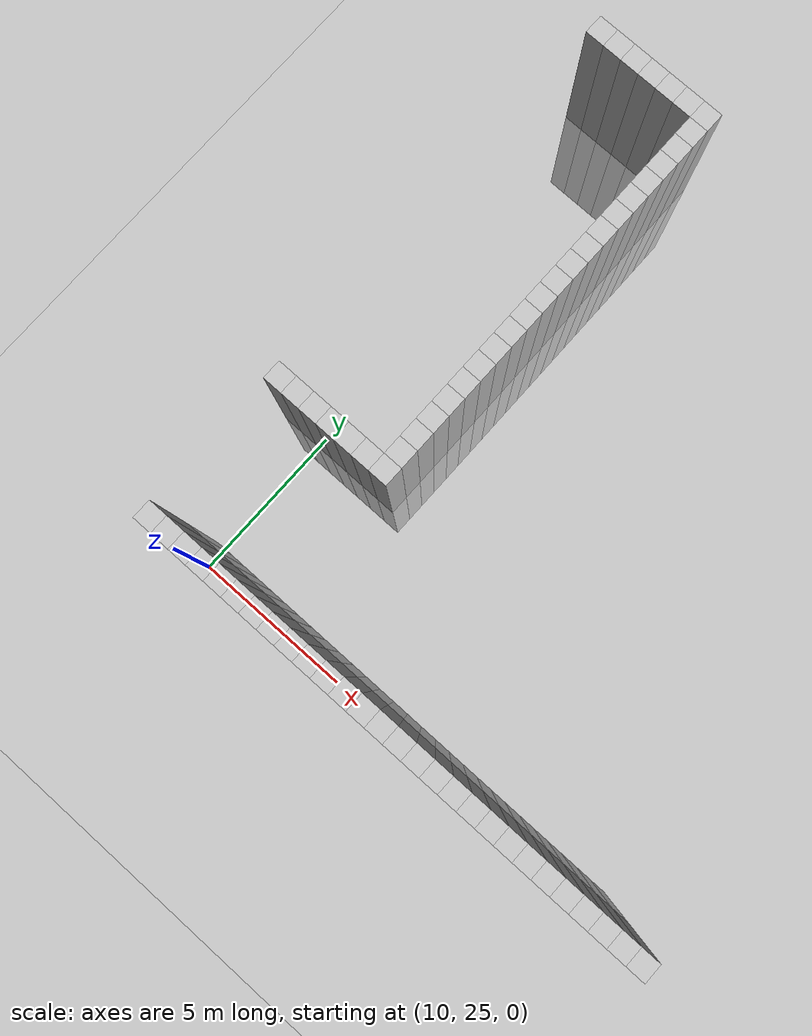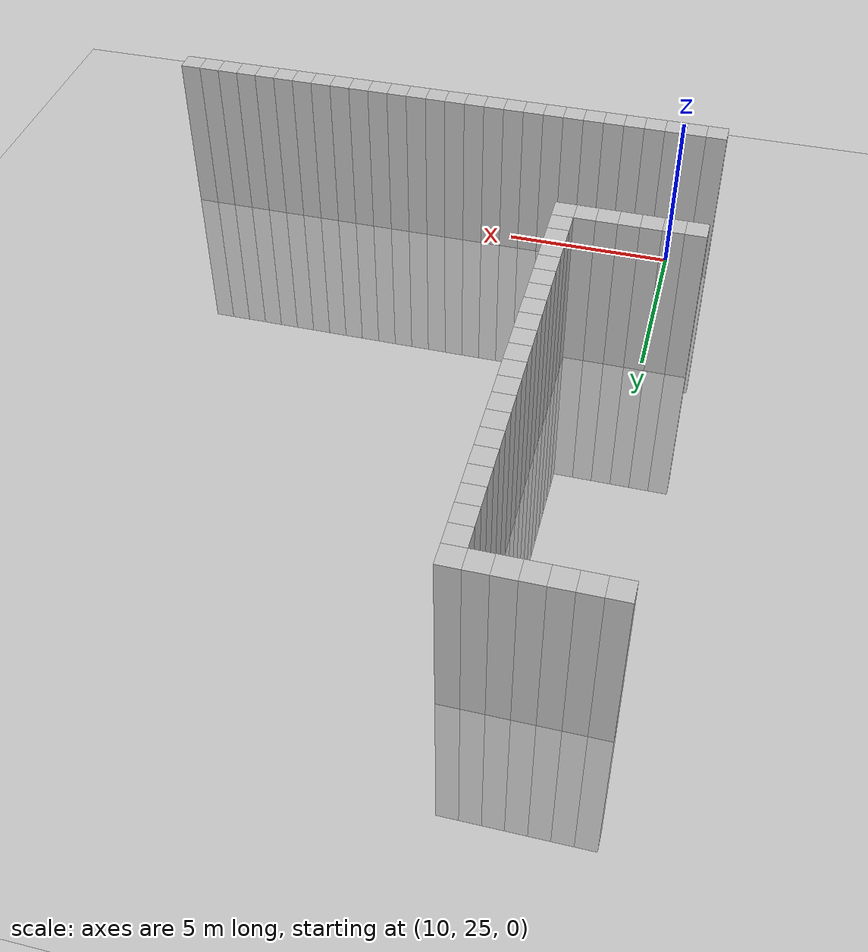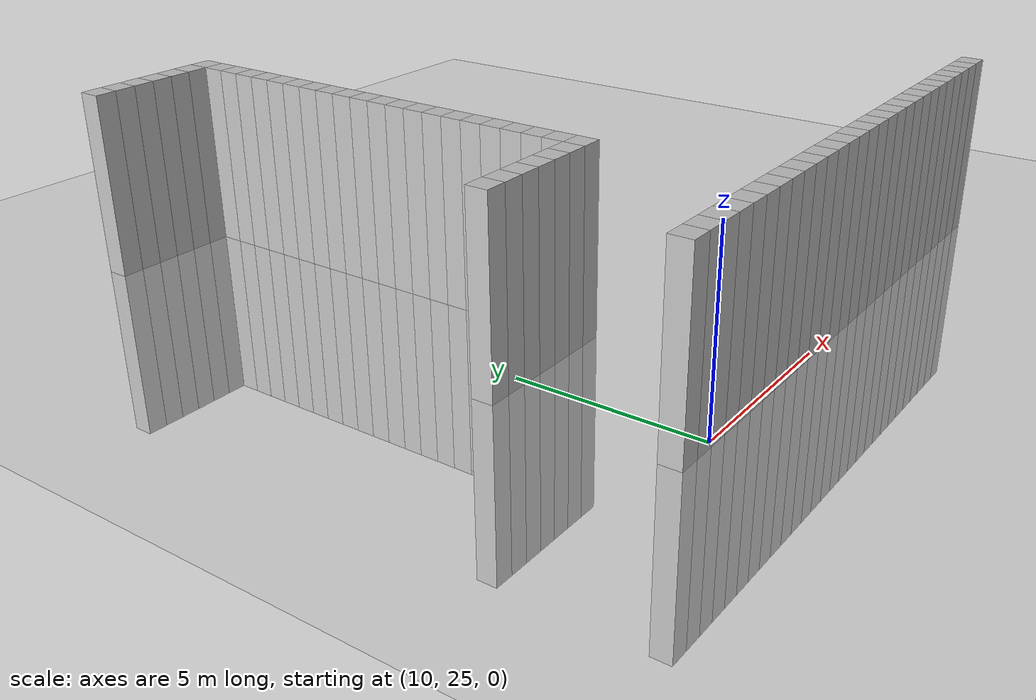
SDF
<sdf version="1.6">
 <world name="default">
  <model name="ground_plane">
   <static>1</static>
   <link name="link">
    <collision name="collision">
     <geometry><plane><normal>0 0 1</normal><size>100 100</size></plane></geometry>
     <surface><friction><ode><mu>100</mu><mu2>50</mu2></ode></friction></surface>
    </collision>
    <visual name="visual">
     <cast_shadows>0</cast_shadows>
     <geometry><plane><normal>0 0 1</normal><size>100 100</size></plane></geometry>
     <material>
      <script><uri>file://media/materials/scripts/gazebo.material</uri><name>Gazebo/Grey</name></script>
     </material>
    </visual>
   </link>
  </model>
  <model name="unit_cylinder_87">
   <static>1</static>
   <pose>9 25.2 0 0 -0 0</pose>
   <link name="link">
    <inertial>
     <mass>1</mass>
     <inertia><ixx>0.145833</ixx><ixy>0</ixy><ixz>0</ixz><iyy>0.145833</iyy><iyz>0</iyz><izz>0.125</izz></inertia>
    </inertial>
    <collision name="collision"><geometry><box><size>0.6 0.6 10</size></box></geometry></collision>
    <visual name="visual">
     <geometry><box><size>0.6 0.6 10</size></box></geometry>
     <material><ambient>0.753 0.753 0.753 1</ambient><diffuse>0.753 0.753 0.753 1</diffuse></material>
     <material>
      <script><name>Gazebo/Grey</name><uri>file://media/materials/scripts/gazebo.material</uri></script>
     </material>
    </visual>
   </link>
  </model>
  <model name="unit_cylinder_90">
   <static>1</static>
   <pose>9.6 25.2 0 0 -0 0</pose>
   <link name="link">
    <inertial>
     <mass>1</mass>
     <inertia><ixx>0.145833</ixx><ixy>0</ixy><ixz>0</ixz><iyy>0.145833</iyy><iyz>0</iyz><izz>0.125</izz></inertia>
    </inertial>
    <collision name="collision"><geometry><box><size>0.6 0.6 10</size></box></geometry></collision>
    <visual name="visual">
     <geometry><box><size>0.6 0.6 10</size></box></geometry>
     <material><ambient>0.753 0.753 0.753 1</ambient><diffuse>0.753 0.753 0.753 1</diffuse></material>
     <material>
      <script><name>Gazebo/Grey</name><uri>file://media/materials/scripts/gazebo.material</uri></script>
     </material>
    </visual>
   </link>
  </model>
  <model name="unit_cylinder_93">
   <static>1</static>
   <pose>10.2 25.2 0 0 -0 0</pose>
   <link name="link">
    <inertial>
     <mass>1</mass>
     <inertia><ixx>0.145833</ixx><ixy>0</ixy><ixz>0</ixz><iyy>0.145833</iyy><iyz>0</iyz><izz>0.125</izz></inertia>
    </inertial>
    <collision name="collision"><geometry><box><size>0.6 0.6 10</size></box></geometry></collision>
    <visual name="visual">
     <geometry><box><size>0.6 0.6 10</size></box></geometry>
     <material><ambient>0.753 0.753 0.753 1</ambient><diffuse>0.753 0.753 0.753 1</diffuse></material>
     <material>
      <script><name>Gazebo/Grey</name><uri>file://media/materials/scripts/gazebo.material</uri></script>
     </material>
    </visual>
   </link>
  </model>
  <model name="unit_cylinder_96">
   <static>1</static>
   <pose>10.8 25.2 0 0 -0 0</pose>
   <link name="link">
    <inertial>
     <mass>1</mass>
     <inertia><ixx>0.145833</ixx><ixy>0</ixy><ixz>0</ixz><iyy>0.145833</iyy><iyz>0</iyz><izz>0.125</izz></inertia>
    </inertial>
    <collision name="collision"><geometry><box><size>0.6 0.6 10</size></box></geometry></collision>
    <visual name="visual">
     <geometry><box><size>0.6 0.6 10</size></box></geometry>
     <material><ambient>0.753 0.753 0.753 1</ambient><diffuse>0.753 0.753 0.753 1</diffuse></material>
     <material>
      <script><name>Gazebo/Grey</name><uri>file://media/materials/scripts/gazebo.material</uri></script>
     </material>
    </visual>
   </link>
  </model>
  <model name="unit_cylinder_99">
   <static>1</static>
   <pose>11.4 25.2 0 0 -0 0</pose>
   <link name="link">
    <inertial>
     <mass>1</mass>
     <inertia><ixx>0.145833</ixx><ixy>0</ixy><ixz>0</ixz><iyy>0.145833</iyy><iyz>0</iyz><izz>0.125</izz></inertia>
    </inertial>
    <collision name="collision"><geometry><box><size>0.6 0.6 10</size></box></geometry></collision>
    <visual name="visual">
     <geometry><box><size>0.6 0.6 10</size></box></geometry>
     <material><ambient>0.753 0.753 0.753 1</ambient><diffuse>0.753 0.753 0.753 1</diffuse></material>
     <material>
      <script><name>Gazebo/Grey</name><uri>file://media/materials/scripts/gazebo.material</uri></script>
     </material>
    </visual>
   </link>
  </model>
  <model name="unit_cylinder_102">
   <static>1</static>
   <pose>12 25.2 0 0 -0 0</pose>
   <link name="link">
    <inertial>
     <mass>1</mass>
     <inertia><ixx>0.145833</ixx><ixy>0</ixy><ixz>0</ixz><iyy>0.145833</iyy><iyz>0</iyz><izz>0.125</izz></inertia>
    </inertial>
    <collision name="collision"><geometry><box><size>0.6 0.6 10</size></box></geometry></collision>
    <visual name="visual">
     <geometry><box><size>0.6 0.6 10</size></box></geometry>
     <material><ambient>0.753 0.753 0.753 1</ambient><diffuse>0.753 0.753 0.753 1</diffuse></material>
     <material>
      <script><name>Gazebo/Grey</name><uri>file://media/materials/scripts/gazebo.material</uri></script>
     </material>
    </visual>
   </link>
  </model>
  <model name="unit_cylinder_145">
   <static>1</static>
   <pose>12.6 25.2 0 0 -0 0</pose>
   <link name="link">
    <inertial>
     <mass>1</mass>
     <inertia><ixx>0.145833</ixx><ixy>0</ixy><ixz>0</ixz><iyy>0.145833</iyy><iyz>0</iyz><izz>0.125</izz></inertia>
    </inertial>
    <collision name="collision"><geometry><box><size>0.6 0.6 10</size></box></geometry></collision>
    <visual name="visual">
     <geometry><box><size>0.6 0.6 10</size></box></geometry>
     <material><ambient>0.753 0.753 0.753 1</ambient><diffuse>0.753 0.753 0.753 1</diffuse></material>
     <material>
      <script><name>Gazebo/Grey</name><uri>file://media/materials/scripts/gazebo.material</uri></script>
     </material>
    </visual>
   </link>
  </model>
  <model name="unit_cylinder_148">
   <static>1</static>
   <pose>13.2 25.2 0 0 -0 0</pose>
   <link name="link">
    <inertial>
     <mass>1</mass>
     <inertia><ixx>0.145833</ixx><ixy>0</ixy><ixz>0</ixz><iyy>0.145833</iyy><iyz>0</iyz><izz>0.125</izz></inertia>
    </inertial>
    <collision name="collision"><geometry><box><size>0.6 0.6 10</size></box></geometry></collision>
    <visual name="visual">
     <geometry><box><size>0.6 0.6 10</size></box></geometry>
     <material><ambient>0.753 0.753 0.753 1</ambient><diffuse>0.753 0.753 0.753 1</diffuse></material>
     <material>
      <script><name>Gazebo/Grey</name><uri>file://media/materials/scripts/gazebo.material</uri></script>
     </material>
    </visual>
   </link>
  </model>
  <model name="unit_cylinder_151">
   <static>1</static>
   <pose>13.8 25.2 0 0 -0 0</pose>
   <link name="link">
    <inertial>
     <mass>1</mass>
     <inertia><ixx>0.145833</ixx><ixy>0</ixy><ixz>0</ixz><iyy>0.145833</iyy><iyz>0</iyz><izz>0.125</izz></inertia>
    </inertial>
    <collision name="collision"><geometry><box><size>0.6 0.6 10</size></box></geometry></collision>
    <visual name="visual">
     <geometry><box><size>0.6 0.6 10</size></box></geometry>
     <material><ambient>0.753 0.753 0.753 1</ambient><diffuse>0.753 0.753 0.753 1</diffuse></material>
     <material>
      <script><name>Gazebo/Grey</name><uri>file://media/materials/scripts/gazebo.material</uri></script>
     </material>
    </visual>
   </link>
  </model>
  <model name="unit_cylinder_154">
   <static>1</static>
   <pose>14.4 25.2 0 0 -0 0</pose>
   <link name="link">
    <inertial>
     <mass>1</mass>
     <inertia><ixx>0.145833</ixx><ixy>0</ixy><ixz>0</ixz><iyy>0.145833</iyy><iyz>0</iyz><izz>0.125</izz></inertia>
    </inertial>
    <collision name="collision"><geometry><box><size>0.6 0.6 10</size></box></geometry></collision>
    <visual name="visual">
     <geometry><box><size>0.6 0.6 10</size></box></geometry>
     <material><ambient>0.753 0.753 0.753 1</ambient><diffuse>0.753 0.753 0.753 1</diffuse></material>
     <material>
      <script><name>Gazebo/Grey</name><uri>file://media/materials/scripts/gazebo.material</uri></script>
     </material>
    </visual>
   </link>
  </model>
  <model name="unit_cylinder_157">
   <static>1</static>
   <pose>15 25.2 0 0 -0 0</pose>
   <link name="link">
    <inertial>
     <mass>1</mass>
     <inertia><ixx>0.145833</ixx><ixy>0</ixy><ixz>0</ixz><iyy>0.145833</iyy><iyz>0</iyz><izz>0.125</izz></inertia>
    </inertial>
    <collision name="collision"><geometry><box><size>0.6 0.6 10</size></box></geometry></collision>
    <visual name="visual">
     <geometry><box><size>0.6 0.6 10</size></box></geometry>
     <material><ambient>0.753 0.753 0.753 1</ambient><diffuse>0.753 0.753 0.753 1</diffuse></material>
     <material>
      <script><name>Gazebo/Grey</name><uri>file://media/materials/scripts/gazebo.material</uri></script>
     </material>
    </visual>
   </link>
  </model>
  <model name="unit_cylinder_160">
   <static>1</static>
   <pose>15.6 25.2 0 0 -0 0</pose>
   <link name="link">
    <inertial>
     <mass>1</mass>
     <inertia><ixx>0.145833</ixx><ixy>0</ixy><ixz>0</ixz><iyy>0.145833</iyy><iyz>0</iyz><izz>0.125</izz></inertia>
    </inertial>
    <collision name="collision"><geometry><box><size>0.6 0.6 10</size></box></geometry></collision>
    <visual name="visual">
     <geometry><box><size>0.6 0.6 10</size></box></geometry>
     <material><ambient>0.753 0.753 0.753 1</ambient><diffuse>0.753 0.753 0.753 1</diffuse></material>
     <material>
      <script><name>Gazebo/Grey</name><uri>file://media/materials/scripts/gazebo.material</uri></script>
     </material>
    </visual>
   </link>
  </model>
  <model name="unit_cylinder_163">
   <static>1</static>
   <pose>16.2 25.2 0 0 -0 0</pose>
   <link name="link">
    <inertial>
     <mass>1</mass>
     <inertia><ixx>0.145833</ixx><ixy>0</ixy><ixz>0</ixz><iyy>0.145833</iyy><iyz>0</iyz><izz>0.125</izz></inertia>
    </inertial>
    <collision name="collision"><geometry><box><size>0.6 0.6 10</size></box></geometry></collision>
    <visual name="visual">
     <geometry><box><size>0.6 0.6 10</size></box></geometry>
     <material><ambient>0.753 0.753 0.753 1</ambient><diffuse>0.753 0.753 0.753 1</diffuse></material>
     <material>
      <script><name>Gazebo/Grey</name><uri>file://media/materials/scripts/gazebo.material</uri></script>
     </material>
    </visual>
   </link>
  </model>
  <model name="unit_cylinder_166">
   <static>1</static>
   <pose>16.8 25.2 0 0 -0 0</pose>
   <link name="link">
    <inertial>
     <mass>1</mass>
     <inertia><ixx>0.145833</ixx><ixy>0</ixy><ixz>0</ixz><iyy>0.145833</iyy><iyz>0</iyz><izz>0.125</izz></inertia>
    </inertial>
    <collision name="collision"><geometry><box><size>0.6 0.6 10</size></box></geometry></collision>
    <visual name="visual">
     <geometry><box><size>0.6 0.6 10</size></box></geometry>
     <material><ambient>0.753 0.753 0.753 1</ambient><diffuse>0.753 0.753 0.753 1</diffuse></material>
     <material>
      <script><name>Gazebo/Grey</name><uri>file://media/materials/scripts/gazebo.material</uri></script>
     </material>
    </visual>
   </link>
  </model>
  <model name="unit_cylinder_169">
   <static>1</static>
   <pose>17.4 25.2 0 0 -0 0</pose>
   <link name="link">
    <inertial>
     <mass>1</mass>
     <inertia><ixx>0.145833</ixx><ixy>0</ixy><ixz>0</ixz><iyy>0.145833</iyy><iyz>0</iyz><izz>0.125</izz></inertia>
    </inertial>
    <collision name="collision"><geometry><box><size>0.6 0.6 10</size></box></geometry></collision>
    <visual name="visual">
     <geometry><box><size>0.6 0.6 10</size></box></geometry>
     <material><ambient>0.753 0.753 0.753 1</ambient><diffuse>0.753 0.753 0.753 1</diffuse></material>
     <material>
      <script><name>Gazebo/Grey</name><uri>file://media/materials/scripts/gazebo.material</uri></script>
     </material>
    </visual>
   </link>
  </model>
  <model name="unit_cylinder_172">
   <static>1</static>
   <pose>18 25.2 0 0 -0 0</pose>
   <link name="link">
    <inertial>
     <mass>1</mass>
     <inertia><ixx>0.145833</ixx><ixy>0</ixy><ixz>0</ixz><iyy>0.145833</iyy><iyz>0</iyz><izz>0.125</izz></inertia>
    </inertial>
    <collision name="collision"><geometry><box><size>0.6 0.6 10</size></box></geometry></collision>
    <visual name="visual">
     <geometry><box><size>0.6 0.6 10</size></box></geometry>
     <material><ambient>0.753 0.753 0.753 1</ambient><diffuse>0.753 0.753 0.753 1</diffuse></material>
     <material>
      <script><name>Gazebo/Grey</name><uri>file://media/materials/scripts/gazebo.material</uri></script>
     </material>
    </visual>
   </link>
  </model>
  <model name="unit_cylinder_175">
   <static>1</static>
   <pose>18.6 25.2 0 0 -0 0</pose>
   <link name="link">
    <inertial>
     <mass>1</mass>
     <inertia><ixx>0.145833</ixx><ixy>0</ixy><ixz>0</ixz><iyy>0.145833</iyy><iyz>0</iyz><izz>0.125</izz></inertia>
    </inertial>
    <collision name="collision"><geometry><box><size>0.6 0.6 10</size></box></geometry></collision>
    <visual name="visual">
     <geometry><box><size>0.6 0.6 10</size></box></geometry>
     <material><ambient>0.753 0.753 0.753 1</ambient><diffuse>0.753 0.753 0.753 1</diffuse></material>
     <material>
      <script><name>Gazebo/Grey</name><uri>file://media/materials/scripts/gazebo.material</uri></script>
     </material>
    </visual>
   </link>
  </model>
  <model name="unit_cylinder_178">
   <static>1</static>
   <pose>19.2 25.2 0 0 -0 0</pose>
   <link name="link">
    <inertial>
     <mass>1</mass>
     <inertia><ixx>0.145833</ixx><ixy>0</ixy><ixz>0</ixz><iyy>0.145833</iyy><iyz>0</iyz><izz>0.125</izz></inertia>
    </inertial>
    <collision name="collision"><geometry><box><size>0.6 0.6 10</size></box></geometry></collision>
    <visual name="visual">
     <geometry><box><size>0.6 0.6 10</size></box></geometry>
     <material><ambient>0.753 0.753 0.753 1</ambient><diffuse>0.753 0.753 0.753 1</diffuse></material>
     <material>
      <script><name>Gazebo/Grey</name><uri>file://media/materials/scripts/gazebo.material</uri></script>
     </material>
    </visual>
   </link>
  </model>
  <model name="unit_cylinder_181">
   <static>1</static>
   <pose>19.8 25.2 0 0 -0 0</pose>
   <link name="link">
    <inertial>
     <mass>1</mass>
     <inertia><ixx>0.145833</ixx><ixy>0</ixy><ixz>0</ixz><iyy>0.145833</iyy><iyz>0</iyz><izz>0.125</izz></inertia>
    </inertial>
    <collision name="collision"><geometry><box><size>0.6 0.6 10</size></box></geometry></collision>
    <visual name="visual">
     <geometry><box><size>0.6 0.6 10</size></box></geometry>
     <material><ambient>0.753 0.753 0.753 1</ambient><diffuse>0.753 0.753 0.753 1</diffuse></material>
     <material>
      <script><name>Gazebo/Grey</name><uri>file://media/materials/scripts/gazebo.material</uri></script>
     </material>
    </visual>
   </link>
  </model>
  <model name="unit_cylinder_184">
   <static>1</static>
   <pose>20.4 25.2 0 0 -0 0</pose>
   <link name="link">
    <inertial>
     <mass>1</mass>
     <inertia><ixx>0.145833</ixx><ixy>0</ixy><ixz>0</ixz><iyy>0.145833</iyy><iyz>0</iyz><izz>0.125</izz></inertia>
    </inertial>
    <collision name="collision"><geometry><box><size>0.6 0.6 10</size></box></geometry></collision>
    <visual name="visual">
     <geometry><box><size>0.6 0.6 10</size></box></geometry>
     <material><ambient>0.753 0.753 0.753 1</ambient><diffuse>0.753 0.753 0.753 1</diffuse></material>
     <material>
      <script><name>Gazebo/Grey</name><uri>file://media/materials/scripts/gazebo.material</uri></script>
     </material>
    </visual>
   </link>
  </model>
  <model name="unit_cylinder_187">
   <static>1</static>
   <pose>21 25.2 0 0 -0 0</pose>
   <link name="link">
    <inertial>
     <mass>1</mass>
     <inertia><ixx>0.145833</ixx><ixy>0</ixy><ixz>0</ixz><iyy>0.145833</iyy><iyz>0</iyz><izz>0.125</izz></inertia>
    </inertial>
    <collision name="collision"><geometry><box><size>0.6 0.6 10</size></box></geometry></collision>
    <visual name="visual">
     <geometry><box><size>0.6 0.6 10</size></box></geometry>
     <material><ambient>0.753 0.753 0.753 1</ambient><diffuse>0.753 0.753 0.753 1</diffuse></material>
     <material>
      <script><name>Gazebo/Grey</name><uri>file://media/materials/scripts/gazebo.material</uri></script>
     </material>
    </visual>
   </link>
  </model>
  <model name="unit_cylinder_190">
   <static>1</static>
   <pose>21.6 25.2 0 0 -0 0</pose>
   <link name="link">
    <inertial>
     <mass>1</mass>
     <inertia><ixx>0.145833</ixx><ixy>0</ixy><ixz>0</ixz><iyy>0.145833</iyy><iyz>0</iyz><izz>0.125</izz></inertia>
    </inertial>
    <collision name="collision"><geometry><box><size>0.6 0.6 10</size></box></geometry></collision>
    <visual name="visual">
     <geometry><box><size>0.6 0.6 10</size></box></geometry>
     <material><ambient>0.753 0.753 0.753 1</ambient><diffuse>0.753 0.753 0.753 1</diffuse></material>
     <material>
      <script><name>Gazebo/Grey</name><uri>file://media/materials/scripts/gazebo.material</uri></script>
     </material>
    </visual>
   </link>
  </model>
  <model name="unit_cylinder_193">
   <static>1</static>
   <pose>22.2 25.2 0 0 -0 0</pose>
   <link name="link">
    <inertial>
     <mass>1</mass>
     <inertia><ixx>0.145833</ixx><ixy>0</ixy><ixz>0</ixz><iyy>0.145833</iyy><iyz>0</iyz><izz>0.125</izz></inertia>
    </inertial>
    <collision name="collision"><geometry><box><size>0.6 0.6 10</size></box></geometry></collision>
    <visual name="visual">
     <geometry><box><size>0.6 0.6 10</size></box></geometry>
     <material><ambient>0.753 0.753 0.753 1</ambient><diffuse>0.753 0.753 0.753 1</diffuse></material>
     <material>
      <script><name>Gazebo/Grey</name><uri>file://media/materials/scripts/gazebo.material</uri></script>
     </material>
    </visual>
   </link>
  </model>
  <model name="unit_cylinder_196">
   <static>1</static>
   <pose>22.8 25.2 0 0 -0 0</pose>
   <link name="link">
    <inertial>
     <mass>1</mass>
     <inertia><ixx>0.145833</ixx><ixy>0</ixy><ixz>0</ixz><iyy>0.145833</iyy><iyz>0</iyz><izz>0.125</izz></inertia>
    </inertial>
    <collision name="collision"><geometry><box><size>0.6 0.6 10</size></box></geometry></collision>
    <visual name="visual">
     <geometry><box><size>0.6 0.6 10</size></box></geometry>
     <material><ambient>0.753 0.753 0.753 1</ambient><diffuse>0.753 0.753 0.753 1</diffuse></material>
     <material>
      <script><name>Gazebo/Grey</name><uri>file://media/materials/scripts/gazebo.material</uri></script>
     </material>
    </visual>
   </link>
  </model>
  <model name="unit_cylinder_199">
   <static>1</static>
   <pose>23.4 25.2 0 0 -0 0</pose>
   <link name="link">
    <inertial>
     <mass>1</mass>
     <inertia><ixx>0.145833</ixx><ixy>0</ixy><ixz>0</ixz><iyy>0.145833</iyy><iyz>0</iyz><izz>0.125</izz></inertia>
    </inertial>
    <collision name="collision"><geometry><box><size>0.6 0.6 10</size></box></geometry></collision>
    <visual name="visual">
     <geometry><box><size>0.6 0.6 10</size></box></geometry>
     <material><ambient>0.753 0.753 0.753 1</ambient><diffuse>0.753 0.753 0.753 1</diffuse></material>
     <material>
      <script><name>Gazebo/Grey</name><uri>file://media/materials/scripts/gazebo.material</uri></script>
     </material>
    </visual>
   </link>
  </model>
  <model name="unit_cylinder_202">
   <static>1</static>
   <pose>24 25.2 0 0 -0 0</pose>
   <link name="link">
    <inertial>
     <mass>1</mass>
     <inertia><ixx>0.145833</ixx><ixy>0</ixy><ixz>0</ixz><iyy>0.145833</iyy><iyz>0</iyz><izz>0.125</izz></inertia>
    </inertial>
    <collision name="collision"><geometry><box><size>0.6 0.6 10</size></box></geometry></collision>
    <visual name="visual">
     <geometry><box><size>0.6 0.6 10</size></box></geometry>
     <material><ambient>0.753 0.753 0.753 1</ambient><diffuse>0.753 0.753 0.753 1</diffuse></material>
     <material>
      <script><name>Gazebo/Grey</name><uri>file://media/materials/scripts/gazebo.material</uri></script>
     </material>
    </visual>
   </link>
  </model>
  <model name="unit_cylinder_205">
   <static>1</static>
   <pose>24.6 25.2 0 0 -0 0</pose>
   <link name="link">
    <inertial>
     <mass>1</mass>
     <inertia><ixx>0.145833</ixx><ixy>0</ixy><ixz>0</ixz><iyy>0.145833</iyy><iyz>0</iyz><izz>0.125</izz></inertia>
    </inertial>
    <collision name="collision"><geometry><box><size>0.6 0.6 10</size></box></geometry></collision>
    <visual name="visual">
     <geometry><box><size>0.6 0.6 10</size></box></geometry>
     <material><ambient>0.753 0.753 0.753 1</ambient><diffuse>0.753 0.753 0.753 1</diffuse></material>
     <material>
      <script><name>Gazebo/Grey</name><uri>file://media/materials/scripts/gazebo.material</uri></script>
     </material>
    </visual>
   </link>
  </model>
  <model name="unit_cylinder_248">
   <static>1</static>
   <pose>25.2 25.2 0 0 -0 0</pose>
   <link name="link">
    <inertial>
     <mass>1</mass>
     <inertia><ixx>0.145833</ixx><ixy>0</ixy><ixz>0</ixz><iyy>0.145833</iyy><iyz>0</iyz><izz>0.125</izz></inertia>
    </inertial>
    <collision name="collision"><geometry><box><size>0.6 0.6 10</size></box></geometry></collision>
    <visual name="visual">
     <geometry><box><size>0.6 0.6 10</size></box></geometry>
     <material><ambient>0.753 0.753 0.753 1</ambient><diffuse>0.753 0.753 0.753 1</diffuse></material>
     <material>
      <script><name>Gazebo/Grey</name><uri>file://media/materials/scripts/gazebo.material</uri></script>
     </material>
    </visual>
   </link>
  </model>
  <model name="unit_cylinder_299">
   <static>1</static>
   <pose>9 30 0 0 -0 0</pose>
   <link name="link">
    <inertial>
     <mass>1</mass>
     <inertia><ixx>0.145833</ixx><ixy>0</ixy><ixz>0</ixz><iyy>0.145833</iyy><iyz>0</iyz><izz>0.125</izz></inertia>
    </inertial>
    <collision name="collision"><geometry><box><size>0.6 0.6 10</size></box></geometry></collision>
    <visual name="visual">
     <geometry><box><size>0.6 0.6 10</size></box></geometry>
     <material><ambient>0.753 0.753 0.753 1</ambient><diffuse>0.753 0.753 0.753 1</diffuse></material>
     <material>
      <script><name>Gazebo/Grey</name><uri>file://media/materials/scripts/gazebo.material</uri></script>
     </material>
    </visual>
   </link>
  </model>
  <model name="unit_cylinder_300">
   <static>1</static>
   <pose>9 42.6 0 0 -0 0</pose>
   <link name="link">
    <inertial>
     <mass>1</mass>
     <inertia><ixx>0.145833</ixx><ixy>0</ixy><ixz>0</ixz><iyy>0.145833</iyy><iyz>0</iyz><izz>0.125</izz></inertia>
    </inertial>
    <collision name="collision"><geometry><box><size>0.6 0.6 10</size></box></geometry></collision>
    <visual name="visual">
     <geometry><box><size>0.6 0.6 10</size></box></geometry>
     <material><ambient>0.753 0.753 0.753 1</ambient><diffuse>0.753 0.753 0.753 1</diffuse></material>
     <material>
      <script><name>Gazebo/Grey</name><uri>file://media/materials/scripts/gazebo.material</uri></script>
     </material>
    </visual>
   </link>
  </model>
  <model name="unit_cylinder_301">
   <static>1</static>
   <pose>9.6 30 0 0 -0 0</pose>
   <link name="link">
    <inertial>
     <mass>1</mass>
     <inertia><ixx>0.145833</ixx><ixy>0</ixy><ixz>0</ixz><iyy>0.145833</iyy><iyz>0</iyz><izz>0.125</izz></inertia>
    </inertial>
    <collision name="collision"><geometry><box><size>0.6 0.6 10</size></box></geometry></collision>
    <visual name="visual">
     <geometry><box><size>0.6 0.6 10</size></box></geometry>
     <material><ambient>0.753 0.753 0.753 1</ambient><diffuse>0.753 0.753 0.753 1</diffuse></material>
     <material>
      <script><name>Gazebo/Grey</name><uri>file://media/materials/scripts/gazebo.material</uri></script>
     </material>
    </visual>
   </link>
  </model>
  <model name="unit_cylinder_302">
   <static>1</static>
   <pose>9.6 42.6 0 0 -0 0</pose>
   <link name="link">
    <inertial>
     <mass>1</mass>
     <inertia><ixx>0.145833</ixx><ixy>0</ixy><ixz>0</ixz><iyy>0.145833</iyy><iyz>0</iyz><izz>0.125</izz></inertia>
    </inertial>
    <collision name="collision"><geometry><box><size>0.6 0.6 10</size></box></geometry></collision>
    <visual name="visual">
     <geometry><box><size>0.6 0.6 10</size></box></geometry>
     <material><ambient>0.753 0.753 0.753 1</ambient><diffuse>0.753 0.753 0.753 1</diffuse></material>
     <material>
      <script><name>Gazebo/Grey</name><uri>file://media/materials/scripts/gazebo.material</uri></script>
     </material>
    </visual>
   </link>
  </model>
  <model name="unit_cylinder_303">
   <static>1</static>
   <pose>10.2 30 0 0 -0 0</pose>
   <link name="link">
    <inertial>
     <mass>1</mass>
     <inertia><ixx>0.145833</ixx><ixy>0</ixy><ixz>0</ixz><iyy>0.145833</iyy><iyz>0</iyz><izz>0.125</izz></inertia>
    </inertial>
    <collision name="collision"><geometry><box><size>0.6 0.6 10</size></box></geometry></collision>
    <visual name="visual">
     <geometry><box><size>0.6 0.6 10</size></box></geometry>
     <material><ambient>0.753 0.753 0.753 1</ambient><diffuse>0.753 0.753 0.753 1</diffuse></material>
     <material>
      <script><name>Gazebo/Grey</name><uri>file://media/materials/scripts/gazebo.material</uri></script>
     </material>
    </visual>
   </link>
  </model>
  <model name="unit_cylinder_304">
   <static>1</static>
   <pose>10.2 42.6 0 0 -0 0</pose>
   <link name="link">
    <inertial>
     <mass>1</mass>
     <inertia><ixx>0.145833</ixx><ixy>0</ixy><ixz>0</ixz><iyy>0.145833</iyy><iyz>0</iyz><izz>0.125</izz></inertia>
    </inertial>
    <collision name="collision"><geometry><box><size>0.6 0.6 10</size></box></geometry></collision>
    <visual name="visual">
     <geometry><box><size>0.6 0.6 10</size></box></geometry>
     <material><ambient>0.753 0.753 0.753 1</ambient><diffuse>0.753 0.753 0.753 1</diffuse></material>
     <material>
      <script><name>Gazebo/Grey</name><uri>file://media/materials/scripts/gazebo.material</uri></script>
     </material>
    </visual>
   </link>
  </model>
  <model name="unit_cylinder_305">
   <static>1</static>
   <pose>10.8 30 0 0 -0 0</pose>
   <link name="link">
    <inertial>
     <mass>1</mass>
     <inertia><ixx>0.145833</ixx><ixy>0</ixy><ixz>0</ixz><iyy>0.145833</iyy><iyz>0</iyz><izz>0.125</izz></inertia>
    </inertial>
    <collision name="collision"><geometry><box><size>0.6 0.6 10</size></box></geometry></collision>
    <visual name="visual">
     <geometry><box><size>0.6 0.6 10</size></box></geometry>
     <material><ambient>0.753 0.753 0.753 1</ambient><diffuse>0.753 0.753 0.753 1</diffuse></material>
     <material>
      <script><name>Gazebo/Grey</name><uri>file://media/materials/scripts/gazebo.material</uri></script>
     </material>
    </visual>
   </link>
  </model>
  <model name="unit_cylinder_306">
   <static>1</static>
   <pose>10.8 42.6 0 0 -0 0</pose>
   <link name="link">
    <inertial>
     <mass>1</mass>
     <inertia><ixx>0.145833</ixx><ixy>0</ixy><ixz>0</ixz><iyy>0.145833</iyy><iyz>0</iyz><izz>0.125</izz></inertia>
    </inertial>
    <collision name="collision"><geometry><box><size>0.6 0.6 10</size></box></geometry></collision>
    <visual name="visual">
     <geometry><box><size>0.6 0.6 10</size></box></geometry>
     <material><ambient>0.753 0.753 0.753 1</ambient><diffuse>0.753 0.753 0.753 1</diffuse></material>
     <material>
      <script><name>Gazebo/Grey</name><uri>file://media/materials/scripts/gazebo.material</uri></script>
     </material>
    </visual>
   </link>
  </model>
  <model name="unit_cylinder_307">
   <static>1</static>
   <pose>11.4 30 0 0 -0 0</pose>
   <link name="link">
    <inertial>
     <mass>1</mass>
     <inertia><ixx>0.145833</ixx><ixy>0</ixy><ixz>0</ixz><iyy>0.145833</iyy><iyz>0</iyz><izz>0.125</izz></inertia>
    </inertial>
    <collision name="collision"><geometry><box><size>0.6 0.6 10</size></box></geometry></collision>
    <visual name="visual">
     <geometry><box><size>0.6 0.6 10</size></box></geometry>
     <material><ambient>0.753 0.753 0.753 1</ambient><diffuse>0.753 0.753 0.753 1</diffuse></material>
     <material>
      <script><name>Gazebo/Grey</name><uri>file://media/materials/scripts/gazebo.material</uri></script>
     </material>
    </visual>
   </link>
  </model>
  <model name="unit_cylinder_308">
   <static>1</static>
   <pose>11.4 42.6 0 0 -0 0</pose>
   <link name="link">
    <inertial>
     <mass>1</mass>
     <inertia><ixx>0.145833</ixx><ixy>0</ixy><ixz>0</ixz><iyy>0.145833</iyy><iyz>0</iyz><izz>0.125</izz></inertia>
    </inertial>
    <collision name="collision"><geometry><box><size>0.6 0.6 10</size></box></geometry></collision>
    <visual name="visual">
     <geometry><box><size>0.6 0.6 10</size></box></geometry>
     <material><ambient>0.753 0.753 0.753 1</ambient><diffuse>0.753 0.753 0.753 1</diffuse></material>
     <material>
      <script><name>Gazebo/Grey</name><uri>file://media/materials/scripts/gazebo.material</uri></script>
     </material>
    </visual>
   </link>
  </model>
  <model name="unit_cylinder_309">
   <static>1</static>
   <pose>12 30 0 0 -0 0</pose>
   <link name="link">
    <inertial>
     <mass>1</mass>
     <inertia><ixx>0.145833</ixx><ixy>0</ixy><ixz>0</ixz><iyy>0.145833</iyy><iyz>0</iyz><izz>0.125</izz></inertia>
    </inertial>
    <collision name="collision"><geometry><box><size>0.6 0.6 10</size></box></geometry></collision>
    <visual name="visual">
     <geometry><box><size>0.6 0.6 10</size></box></geometry>
     <material><ambient>0.753 0.753 0.753 1</ambient><diffuse>0.753 0.753 0.753 1</diffuse></material>
     <material>
      <script><name>Gazebo/Grey</name><uri>file://media/materials/scripts/gazebo.material</uri></script>
     </material>
    </visual>
   </link>
  </model>
  <model name="unit_cylinder_310">
   <static>1</static>
   <pose>12 42.6 0 0 -0 0</pose>
   <link name="link">
    <inertial>
     <mass>1</mass>
     <inertia><ixx>0.145833</ixx><ixy>0</ixy><ixz>0</ixz><iyy>0.145833</iyy><iyz>0</iyz><izz>0.125</izz></inertia>
    </inertial>
    <collision name="collision"><geometry><box><size>0.6 0.6 10</size></box></geometry></collision>
    <visual name="visual">
     <geometry><box><size>0.6 0.6 10</size></box></geometry>
     <material><ambient>0.753 0.753 0.753 1</ambient><diffuse>0.753 0.753 0.753 1</diffuse></material>
     <material>
      <script><name>Gazebo/Grey</name><uri>file://media/materials/scripts/gazebo.material</uri></script>
     </material>
    </visual>
   </link>
  </model>
  <model name="unit_cylinder_311">
   <static>1</static>
   <pose>12.6 30 0 0 -0 0</pose>
   <link name="link">
    <inertial>
     <mass>1</mass>
     <inertia><ixx>0.145833</ixx><ixy>0</ixy><ixz>0</ixz><iyy>0.145833</iyy><iyz>0</iyz><izz>0.125</izz></inertia>
    </inertial>
    <collision name="collision"><geometry><box><size>0.6 0.6 10</size></box></geometry></collision>
    <visual name="visual">
     <geometry><box><size>0.6 0.6 10</size></box></geometry>
     <material><ambient>0.753 0.753 0.753 1</ambient><diffuse>0.753 0.753 0.753 1</diffuse></material>
     <material>
      <script><name>Gazebo/Grey</name><uri>file://media/materials/scripts/gazebo.material</uri></script>
     </material>
    </visual>
   </link>
  </model>
  <model name="unit_cylinder_312">
   <static>1</static>
   <pose>12.6 30.6 0 0 -0 0</pose>
   <link name="link">
    <inertial>
     <mass>1</mass>
     <inertia><ixx>0.145833</ixx><ixy>0</ixy><ixz>0</ixz><iyy>0.145833</iyy><iyz>0</iyz><izz>0.125</izz></inertia>
    </inertial>
    <collision name="collision"><geometry><box><size>0.6 0.6 10</size></box></geometry></collision>
    <visual name="visual">
     <geometry><box><size>0.6 0.6 10</size></box></geometry>
     <material><ambient>0.753 0.753 0.753 1</ambient><diffuse>0.753 0.753 0.753 1</diffuse></material>
     <material>
      <script><name>Gazebo/Grey</name><uri>file://media/materials/scripts/gazebo.material</uri></script>
     </material>
    </visual>
   </link>
  </model>
  <model name="unit_cylinder_313">
   <static>1</static>
   <pose>12.6 31.2 0 0 -0 0</pose>
   <link name="link">
    <inertial>
     <mass>1</mass>
     <inertia><ixx>0.145833</ixx><ixy>0</ixy><ixz>0</ixz><iyy>0.145833</iyy><iyz>0</iyz><izz>0.125</izz></inertia>
    </inertial>
    <collision name="collision"><geometry><box><size>0.6 0.6 10</size></box></geometry></collision>
    <visual name="visual">
     <geometry><box><size>0.6 0.6 10</size></box></geometry>
     <material><ambient>0.753 0.753 0.753 1</ambient><diffuse>0.753 0.753 0.753 1</diffuse></material>
     <material>
      <script><name>Gazebo/Grey</name><uri>file://media/materials/scripts/gazebo.material</uri></script>
     </material>
    </visual>
   </link>
  </model>
  <model name="unit_cylinder_314">
   <static>1</static>
   <pose>12.6 31.8 0 0 -0 0</pose>
   <link name="link">
    <inertial>
     <mass>1</mass>
     <inertia><ixx>0.145833</ixx><ixy>0</ixy><ixz>0</ixz><iyy>0.145833</iyy><iyz>0</iyz><izz>0.125</izz></inertia>
    </inertial>
    <collision name="collision"><geometry><box><size>0.6 0.6 10</size></box></geometry></collision>
    <visual name="visual">
     <geometry><box><size>0.6 0.6 10</size></box></geometry>
     <material><ambient>0.753 0.753 0.753 1</ambient><diffuse>0.753 0.753 0.753 1</diffuse></material>
     <material>
      <script><name>Gazebo/Grey</name><uri>file://media/materials/scripts/gazebo.material</uri></script>
     </material>
    </visual>
   </link>
  </model>
  <model name="unit_cylinder_315">
   <static>1</static>
   <pose>12.6 32.4 0 0 -0 0</pose>
   <link name="link">
    <inertial>
     <mass>1</mass>
     <inertia><ixx>0.145833</ixx><ixy>0</ixy><ixz>0</ixz><iyy>0.145833</iyy><iyz>0</iyz><izz>0.125</izz></inertia>
    </inertial>
    <collision name="collision"><geometry><box><size>0.6 0.6 10</size></box></geometry></collision>
    <visual name="visual">
     <geometry><box><size>0.6 0.6 10</size></box></geometry>
     <material><ambient>0.753 0.753 0.753 1</ambient><diffuse>0.753 0.753 0.753 1</diffuse></material>
     <material>
      <script><name>Gazebo/Grey</name><uri>file://media/materials/scripts/gazebo.material</uri></script>
     </material>
    </visual>
   </link>
  </model>
  <model name="unit_cylinder_316">
   <static>1</static>
   <pose>12.6 33 0 0 -0 0</pose>
   <link name="link">
    <inertial>
     <mass>1</mass>
     <inertia><ixx>0.145833</ixx><ixy>0</ixy><ixz>0</ixz><iyy>0.145833</iyy><iyz>0</iyz><izz>0.125</izz></inertia>
    </inertial>
    <collision name="collision"><geometry><box><size>0.6 0.6 10</size></box></geometry></collision>
    <visual name="visual">
     <geometry><box><size>0.6 0.6 10</size></box></geometry>
     <material><ambient>0.753 0.753 0.753 1</ambient><diffuse>0.753 0.753 0.753 1</diffuse></material>
     <material>
      <script><name>Gazebo/Grey</name><uri>file://media/materials/scripts/gazebo.material</uri></script>
     </material>
    </visual>
   </link>
  </model>
  <model name="unit_cylinder_317">
   <static>1</static>
   <pose>12.6 33.6 0 0 -0 0</pose>
   <link name="link">
    <inertial>
     <mass>1</mass>
     <inertia><ixx>0.145833</ixx><ixy>0</ixy><ixz>0</ixz><iyy>0.145833</iyy><iyz>0</iyz><izz>0.125</izz></inertia>
    </inertial>
    <collision name="collision"><geometry><box><size>0.6 0.6 10</size></box></geometry></collision>
    <visual name="visual">
     <geometry><box><size>0.6 0.6 10</size></box></geometry>
     <material><ambient>0.753 0.753 0.753 1</ambient><diffuse>0.753 0.753 0.753 1</diffuse></material>
     <material>
      <script><name>Gazebo/Grey</name><uri>file://media/materials/scripts/gazebo.material</uri></script>
     </material>
    </visual>
   </link>
  </model>
  <model name="unit_cylinder_318">
   <static>1</static>
   <pose>12.6 34.2 0 0 -0 0</pose>
   <link name="link">
    <inertial>
     <mass>1</mass>
     <inertia><ixx>0.145833</ixx><ixy>0</ixy><ixz>0</ixz><iyy>0.145833</iyy><iyz>0</iyz><izz>0.125</izz></inertia>
    </inertial>
    <collision name="collision"><geometry><box><size>0.6 0.6 10</size></box></geometry></collision>
    <visual name="visual">
     <geometry><box><size>0.6 0.6 10</size></box></geometry>
     <material><ambient>0.753 0.753 0.753 1</ambient><diffuse>0.753 0.753 0.753 1</diffuse></material>
     <material>
      <script><name>Gazebo/Grey</name><uri>file://media/materials/scripts/gazebo.material</uri></script>
     </material>
    </visual>
   </link>
  </model>
  <model name="unit_cylinder_319">
   <static>1</static>
   <pose>12.6 34.8 0 0 -0 0</pose>
   <link name="link">
    <inertial>
     <mass>1</mass>
     <inertia><ixx>0.145833</ixx><ixy>0</ixy><ixz>0</ixz><iyy>0.145833</iyy><iyz>0</iyz><izz>0.125</izz></inertia>
    </inertial>
    <collision name="collision"><geometry><box><size>0.6 0.6 10</size></box></geometry></collision>
    <visual name="visual">
     <geometry><box><size>0.6 0.6 10</size></box></geometry>
     <material><ambient>0.753 0.753 0.753 1</ambient><diffuse>0.753 0.753 0.753 1</diffuse></material>
     <material>
      <script><name>Gazebo/Grey</name><uri>file://media/materials/scripts/gazebo.material</uri></script>
     </material>
    </visual>
   </link>
  </model>
  <model name="unit_cylinder_320">
   <static>1</static>
   <pose>12.6 35.4 0 0 -0 0</pose>
   <link name="link">
    <inertial>
     <mass>1</mass>
     <inertia><ixx>0.145833</ixx><ixy>0</ixy><ixz>0</ixz><iyy>0.145833</iyy><iyz>0</iyz><izz>0.125</izz></inertia>
    </inertial>
    <collision name="collision"><geometry><box><size>0.6 0.6 10</size></box></geometry></collision>
    <visual name="visual">
     <geometry><box><size>0.6 0.6 10</size></box></geometry>
     <material><ambient>0.753 0.753 0.753 1</ambient><diffuse>0.753 0.753 0.753 1</diffuse></material>
     <material>
      <script><name>Gazebo/Grey</name><uri>file://media/materials/scripts/gazebo.material</uri></script>
     </material>
    </visual>
   </link>
  </model>
  <model name="unit_cylinder_321">
   <static>1</static>
   <pose>12.6 36 0 0 -0 0</pose>
   <link name="link">
    <inertial>
     <mass>1</mass>
     <inertia><ixx>0.145833</ixx><ixy>0</ixy><ixz>0</ixz><iyy>0.145833</iyy><iyz>0</iyz><izz>0.125</izz></inertia>
    </inertial>
    <collision name="collision"><geometry><box><size>0.6 0.6 10</size></box></geometry></collision>
    <visual name="visual">
     <geometry><box><size>0.6 0.6 10</size></box></geometry>
     <material><ambient>0.753 0.753 0.753 1</ambient><diffuse>0.753 0.753 0.753 1</diffuse></material>
     <material>
      <script><name>Gazebo/Grey</name><uri>file://media/materials/scripts/gazebo.material</uri></script>
     </material>
    </visual>
   </link>
  </model>
  <model name="unit_cylinder_322">
   <static>1</static>
   <pose>12.6 36.6 0 0 -0 0</pose>
   <link name="link">
    <inertial>
     <mass>1</mass>
     <inertia><ixx>0.145833</ixx><ixy>0</ixy><ixz>0</ixz><iyy>0.145833</iyy><iyz>0</iyz><izz>0.125</izz></inertia>
    </inertial>
    <collision name="collision"><geometry><box><size>0.6 0.6 10</size></box></geometry></collision>
    <visual name="visual">
     <geometry><box><size>0.6 0.6 10</size></box></geometry>
     <material><ambient>0.753 0.753 0.753 1</ambient><diffuse>0.753 0.753 0.753 1</diffuse></material>
     <material>
      <script><name>Gazebo/Grey</name><uri>file://media/materials/scripts/gazebo.material</uri></script>
     </material>
    </visual>
   </link>
  </model>
  <model name="unit_cylinder_323">
   <static>1</static>
   <pose>12.6 37.2 0 0 -0 0</pose>
   <link name="link">
    <inertial>
     <mass>1</mass>
     <inertia><ixx>0.145833</ixx><ixy>0</ixy><ixz>0</ixz><iyy>0.145833</iyy><iyz>0</iyz><izz>0.125</izz></inertia>
    </inertial>
    <collision name="collision"><geometry><box><size>0.6 0.6 10</size></box></geometry></collision>
    <visual name="visual">
     <geometry><box><size>0.6 0.6 10</size></box></geometry>
     <material><ambient>0.753 0.753 0.753 1</ambient><diffuse>0.753 0.753 0.753 1</diffuse></material>
     <material>
      <script><name>Gazebo/Grey</name><uri>file://media/materials/scripts/gazebo.material</uri></script>
     </material>
    </visual>
   </link>
  </model>
  <model name="unit_cylinder_324">
   <static>1</static>
   <pose>12.6 37.8 0 0 -0 0</pose>
   <link name="link">
    <inertial>
     <mass>1</mass>
     <inertia><ixx>0.145833</ixx><ixy>0</ixy><ixz>0</ixz><iyy>0.145833</iyy><iyz>0</iyz><izz>0.125</izz></inertia>
    </inertial>
    <collision name="collision"><geometry><box><size>0.6 0.6 10</size></box></geometry></collision>
    <visual name="visual">
     <geometry><box><size>0.6 0.6 10</size></box></geometry>
     <material><ambient>0.753 0.753 0.753 1</ambient><diffuse>0.753 0.753 0.753 1</diffuse></material>
     <material>
      <script><name>Gazebo/Grey</name><uri>file://media/materials/scripts/gazebo.material</uri></script>
     </material>
    </visual>
   </link>
  </model>
  <model name="unit_cylinder_325">
   <static>1</static>
   <pose>12.6 38.4 0 0 -0 0</pose>
   <link name="link">
    <inertial>
     <mass>1</mass>
     <inertia><ixx>0.145833</ixx><ixy>0</ixy><ixz>0</ixz><iyy>0.145833</iyy><iyz>0</iyz><izz>0.125</izz></inertia>
    </inertial>
    <collision name="collision"><geometry><box><size>0.6 0.6 10</size></box></geometry></collision>
    <visual name="visual">
     <geometry><box><size>0.6 0.6 10</size></box></geometry>
     <material><ambient>0.753 0.753 0.753 1</ambient><diffuse>0.753 0.753 0.753 1</diffuse></material>
     <material>
      <script><name>Gazebo/Grey</name><uri>file://media/materials/scripts/gazebo.material</uri></script>
     </material>
    </visual>
   </link>
  </model>
  <model name="unit_cylinder_326">
   <static>1</static>
   <pose>12.6 39 0 0 -0 0</pose>
   <link name="link">
    <inertial>
     <mass>1</mass>
     <inertia><ixx>0.145833</ixx><ixy>0</ixy><ixz>0</ixz><iyy>0.145833</iyy><iyz>0</iyz><izz>0.125</izz></inertia>
    </inertial>
    <collision name="collision"><geometry><box><size>0.6 0.6 10</size></box></geometry></collision>
    <visual name="visual">
     <geometry><box><size>0.6 0.6 10</size></box></geometry>
     <material><ambient>0.753 0.753 0.753 1</ambient><diffuse>0.753 0.753 0.753 1</diffuse></material>
     <material>
      <script><name>Gazebo/Grey</name><uri>file://media/materials/scripts/gazebo.material</uri></script>
     </material>
    </visual>
   </link>
  </model>
  <model name="unit_cylinder_327">
   <static>1</static>
   <pose>12.6 39.6 0 0 -0 0</pose>
   <link name="link">
    <inertial>
     <mass>1</mass>
     <inertia><ixx>0.145833</ixx><ixy>0</ixy><ixz>0</ixz><iyy>0.145833</iyy><iyz>0</iyz><izz>0.125</izz></inertia>
    </inertial>
    <collision name="collision"><geometry><box><size>0.6 0.6 10</size></box></geometry></collision>
    <visual name="visual">
     <geometry><box><size>0.6 0.6 10</size></box></geometry>
     <material><ambient>0.753 0.753 0.753 1</ambient><diffuse>0.753 0.753 0.753 1</diffuse></material>
     <material>
      <script><name>Gazebo/Grey</name><uri>file://media/materials/scripts/gazebo.material</uri></script>
     </material>
    </visual>
   </link>
  </model>
  <model name="unit_cylinder_328">
   <static>1</static>
   <pose>12.6 40.2 0 0 -0 0</pose>
   <link name="link">
    <inertial>
     <mass>1</mass>
     <inertia><ixx>0.145833</ixx><ixy>0</ixy><ixz>0</ixz><iyy>0.145833</iyy><iyz>0</iyz><izz>0.125</izz></inertia>
    </inertial>
    <collision name="collision"><geometry><box><size>0.6 0.6 10</size></box></geometry></collision>
    <visual name="visual">
     <geometry><box><size>0.6 0.6 10</size></box></geometry>
     <material><ambient>0.753 0.753 0.753 1</ambient><diffuse>0.753 0.753 0.753 1</diffuse></material>
     <material>
      <script><name>Gazebo/Grey</name><uri>file://media/materials/scripts/gazebo.material</uri></script>
     </material>
    </visual>
   </link>
  </model>
  <model name="unit_cylinder_329">
   <static>1</static>
   <pose>12.6 40.8 0 0 -0 0</pose>
   <link name="link">
    <inertial>
     <mass>1</mass>
     <inertia><ixx>0.145833</ixx><ixy>0</ixy><ixz>0</ixz><iyy>0.145833</iyy><iyz>0</iyz><izz>0.125</izz></inertia>
    </inertial>
    <collision name="collision"><geometry><box><size>0.6 0.6 10</size></box></geometry></collision>
    <visual name="visual">
     <geometry><box><size>0.6 0.6 10</size></box></geometry>
     <material><ambient>0.753 0.753 0.753 1</ambient><diffuse>0.753 0.753 0.753 1</diffuse></material>
     <material>
      <script><name>Gazebo/Grey</name><uri>file://media/materials/scripts/gazebo.material</uri></script>
     </material>
    </visual>
   </link>
  </model>
  <model name="unit_cylinder_330">
   <static>1</static>
   <pose>12.6 41.4 0 0 -0 0</pose>
   <link name="link">
    <inertial>
     <mass>1</mass>
     <inertia><ixx>0.145833</ixx><ixy>0</ixy><ixz>0</ixz><iyy>0.145833</iyy><iyz>0</iyz><izz>0.125</izz></inertia>
    </inertial>
    <collision name="collision"><geometry><box><size>0.6 0.6 10</size></box></geometry></collision>
    <visual name="visual">
     <geometry><box><size>0.6 0.6 10</size></box></geometry>
     <material><ambient>0.753 0.753 0.753 1</ambient><diffuse>0.753 0.753 0.753 1</diffuse></material>
     <material>
      <script><name>Gazebo/Grey</name><uri>file://media/materials/scripts/gazebo.material</uri></script>
     </material>
    </visual>
   </link>
  </model>
  <model name="unit_cylinder_331">
   <static>1</static>
   <pose>12.6 42 0 0 -0 0</pose>
   <link name="link">
    <inertial>
     <mass>1</mass>
     <inertia><ixx>0.145833</ixx><ixy>0</ixy><ixz>0</ixz><iyy>0.145833</iyy><iyz>0</iyz><izz>0.125</izz></inertia>
    </inertial>
    <collision name="collision"><geometry><box><size>0.6 0.6 10</size></box></geometry></collision>
    <visual name="visual">
     <geometry><box><size>0.6 0.6 10</size></box></geometry>
     <material><ambient>0.753 0.753 0.753 1</ambient><diffuse>0.753 0.753 0.753 1</diffuse></material>
     <material>
      <script><name>Gazebo/Grey</name><uri>file://media/materials/scripts/gazebo.material</uri></script>
     </material>
    </visual>
   </link>
  </model>
  <model name="unit_cylinder_332">
   <static>1</static>
   <pose>12.6 42.6 0 0 -0 0</pose>
   <link name="link">
    <inertial>
     <mass>1</mass>
     <inertia><ixx>0.145833</ixx><ixy>0</ixy><ixz>0</ixz><iyy>0.145833</iyy><iyz>0</iyz><izz>0.125</izz></inertia>
    </inertial>
    <collision name="collision"><geometry><box><size>0.6 0.6 10</size></box></geometry></collision>
    <visual name="visual">
     <geometry><box><size>0.6 0.6 10</size></box></geometry>
     <material><ambient>0.753 0.753 0.753 1</ambient><diffuse>0.753 0.753 0.753 1</diffuse></material>
     <material>
      <script><name>Gazebo/Grey</name><uri>file://media/materials/scripts/gazebo.material</uri></script>
     </material>
    </visual>
   </link>
  </model>
 </world>
</sdf>
